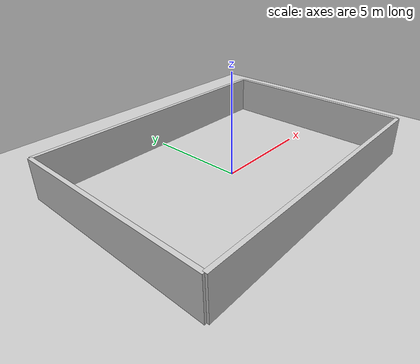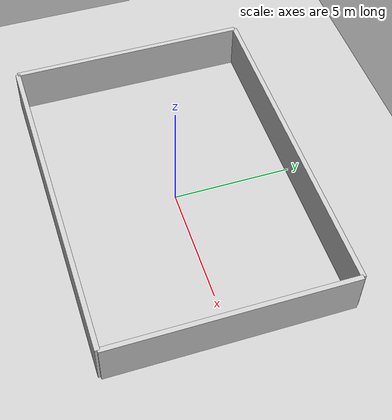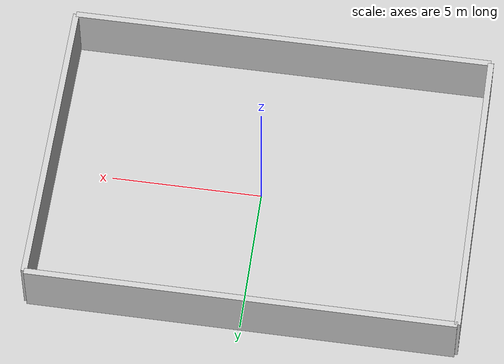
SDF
<sdf version="1.5">
  <world name="default">
    <include>
      <uri>model://sun</uri>
    </include>
    <include>
      <uri>model://ground_plane</uri>
    </include>

    <!-- 14x10m room walls -->
    <model name="room_walls">
      <static>true</static>
      <link name="walls">
        <collision name="wall_1">
          <pose>7 0 1 0 0 0</pose>
          <geometry>
            <box>
              <size>0.2 10 2</size>
            </box>
          </geometry>
        </collision>
        <visual name="wall_1_visual">
          <pose>7 0 1 0 0 0</pose>
          <geometry>
            <box>
              <size>0.2 10 2</size>
            </box>
          </geometry>
          <material>
            <ambient>0.8 0.8 0.8 1</ambient>
            <diffuse>0.8 0.8 0.8 1</diffuse>
          </material>
        </visual>

        <collision name="wall_2">
          <pose>-7 0 1 0 0 0</pose>
          <geometry>
            <box>
              <size>0.2 10 2</size>
            </box>
          </geometry>
        </collision>
        <visual name="wall_2_visual">
          <pose>-7 0 1 0 0 0</pose>
          <geometry>
            <box>
              <size>0.2 10 2</size>
            </box>
          </geometry>
          <material>
            <ambient>0.8 0.8 0.8 1</ambient>
            <diffuse>0.8 0.8 0.8 1</diffuse>
          </material>
        </visual>

        <collision name="wall_3">
          <pose>0 5 1 0 0 0</pose>
          <geometry>
            <box>
              <size>14 0.2 2</size>
            </box>
          </geometry>
        </collision>
        <visual name="wall_3_visual">
          <pose>0 5 1 0 0 0</pose>
          <geometry>
            <box>
              <size>14 0.2 2</size>
            </box>
          </geometry>
          <material>
            <ambient>0.8 0.8 0.8 1</ambient>
            <diffuse>0.8 0.8 0.8 1</diffuse>
          </material>
        </visual>

        <collision name="wall_4">
          <pose>0 -5 1 0 0 0</pose>
          <geometry>
            <box>
              <size>14 0.2 2</size>
            </box>
          </geometry>
        </collision>
        <visual name="wall_4_visual">
          <pose>0 -5 1 0 0 0</pose>
          <geometry>
            <box>
              <size>14 0.2 2</size>
            </box>
          </geometry>
          <material>
            <ambient>0.8 0.8 0.8 1</ambient>
            <diffuse>0.8 0.8 0.8 1</diffuse>
          </material>
        </visual>
      </link>
    </model>
  </world>
</sdf>
